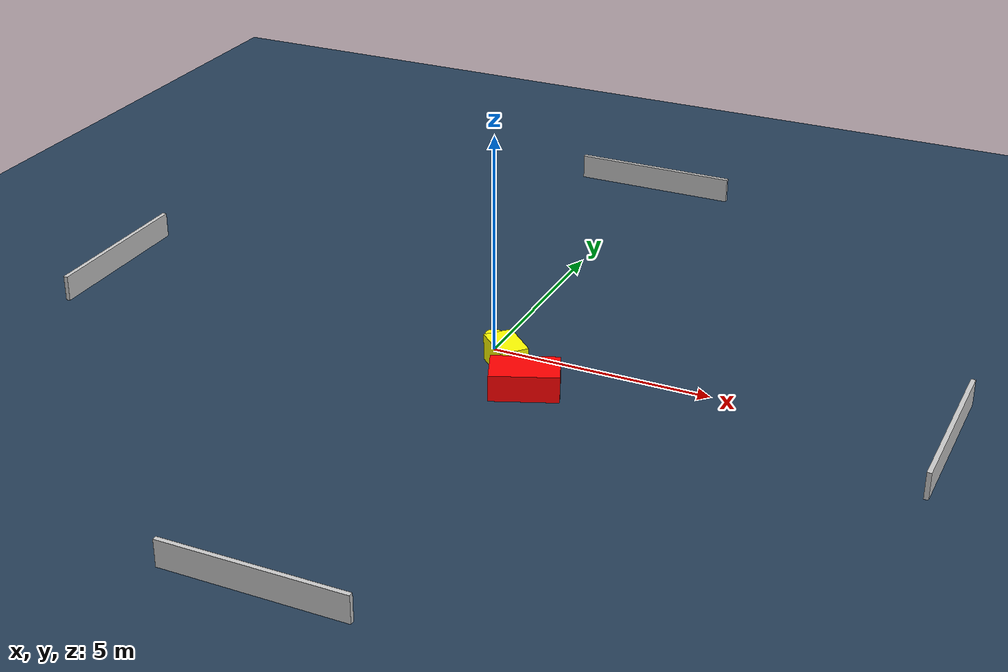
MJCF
<?xml version="1.0" ?>
<mujoco model="generated_environment">
  <option timestep="0.01" integrator="RK4" cone="elliptic"/>
  <default>
    <geom density="1"/>
  </default>
  <asset>
    <texture builtin="gradient" height="3072" name="skybox" rgb1="0.3 0.5 0.7" rgb2="0 0 0" type="skybox" width="512"/>
    <texture builtin="checker" height="300" name="groundplane" rgb1="0.2 0.3 0.4" rgb2="0.1 0.2 0.3" type="2d" width="300"/>
    <material name="groundplane" reflectance="0.2" texrepeat="5 5" texture="groundplane"/>
  </asset>
  <worldbody>
    <light dir="0 0 -1" directional="true" pos="0 0 1.5"/>
    <geom condim="3" friction="0.5 0.005 0.001" material="groundplane" name="floor" pos="0 0 0" size="0 0 0.05" type="plane"/>
    <body name="walls">
      <geom name="wall_1" condim="4" pos="-10.0 0.0 0.3" rgba="0.800000011920929 0.800000011920929 0.800000011920929 1.0" size="0.05 2.0 0.3" type="box"/>
      <geom name="wall_2" condim="4" pos="10.0 0.0 0.3" rgba="0.800000011920929 0.800000011920929 0.800000011920929 1.0" size="0.05 2.0 0.3" type="box"/>
      <geom name="wall_3" condim="4" pos="0.0 -10.0 0.3" rgba="0.800000011920929 0.800000011920929 0.800000011920929 1.0" size="2.0 0.05 0.3" type="box"/>
      <geom name="wall_4" condim="4" pos="0.0 10.0 0.3" rgba="0.800000011920929 0.800000011920929 0.800000011920929 1.0" size="2.0 0.05 0.3" type="box"/>
    </body>
    <body name="robot">
      <joint name="joint_x" type="slide" pos="0 0 0" axis="1 0 0"/>
      <joint name="joint_y" type="slide" pos="0 0 0" axis="0 1 0"/>
      <geom name="robot" type="cylinder" pos="0.0 0.0 0.2" size="0.2 0.2 0.0" mass="5.0" friction="1.0 0.005 0.0001" condim="4" rgba="1.0 1.0 0.0 1.0"/>
    </body>
    <body name="obstacle_1_movable">
      <geom name="obstacle_1_movable" condim="4" pos="0.5460278597558645 -0.5762063625268197 0.3" euler="0 0 136.81239960596832" friction="0.0 0.005 0.001" rgba="1.0 1.0 0.0 1.0" size="0.4852116526760681 0.326926862758827 0.3" type="box" mass="0.1"/>
      <joint type="free"/>
    </body>
    <body name="obstacle_2_static">
      <geom name="obstacle_2_static" condim="4" pos="1.3710551157875217 -1.4283646566716324 0.3" euler="0 0 111.99600738372169" friction="0.0 0.005 0.001" rgba="1.0 0.0 0.0 1.0" size="0.45863665640548157 0.7510741067487225 0.3" type="box"/>
    </body>
  </worldbody>
  <actuator>
    <motor name="actuator_x" joint="joint_x" gear="1" ctrlrange="-1 1"/>
    <motor name="actuator_y" joint="joint_y" gear="1" ctrlrange="-1 1"/>
  </actuator>
</mujoco>
